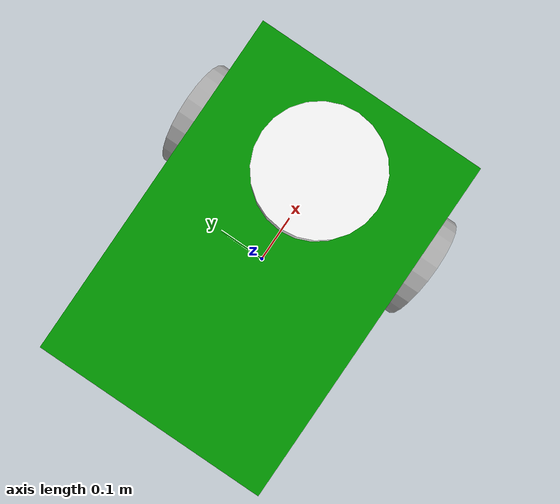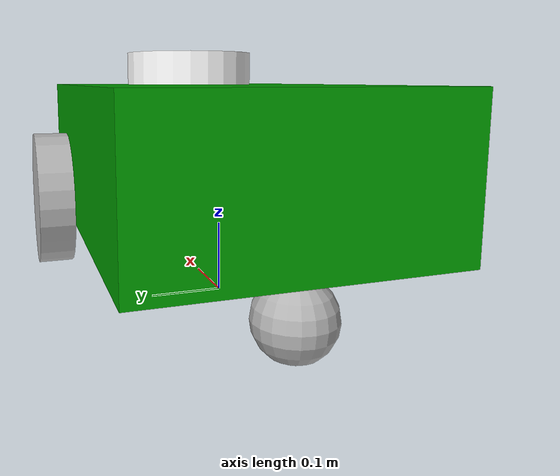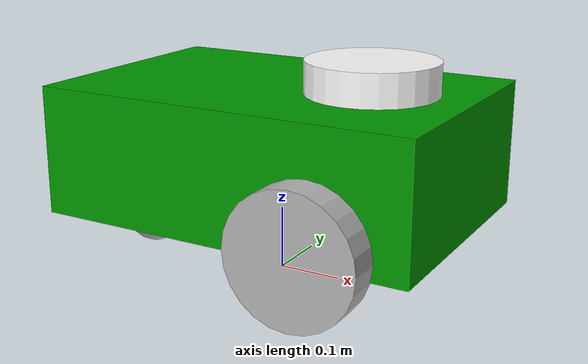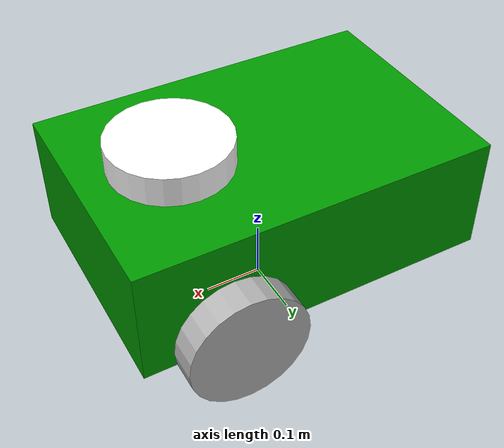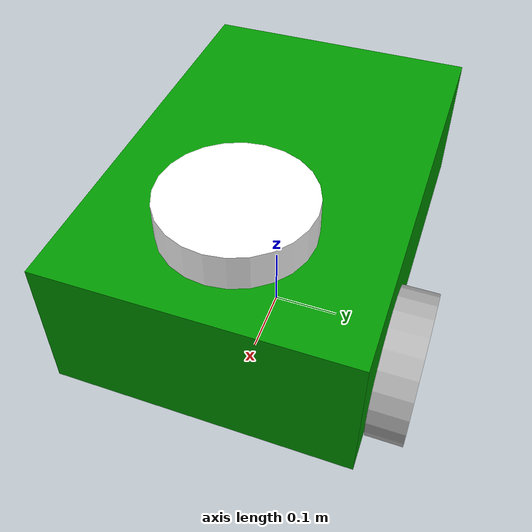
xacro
<?xml version="1.0"?>
<robot name="my_robot" xmlns:xacro="http://www.ros.org/wiki/xacro">

    <xacro:property name="base_length" value="0.6"/>
    <xacro:property name="base_width" value="0.4"/>
    <xacro:property name="base_height" value="0.2"/>
    <xacro:property name="wheel_radius" value="0.1"/>
    <xacro:property name="wheel_length" value="0.05"/>

    <!-- Inertia Macros -->
    <xacro:macro name="box_inertia" params="mass lx ly lz xyz rpy">
        <inertial>
            <origin xyz="${xyz}" rpy="${rpy}" />
            <mass value="${mass}" />
            <inertia ixx="${(mass / 12.0) * (ly * ly + lz * lz)}" ixy="0" ixz="0"
                     iyy="${(mass / 12.0) * (lx * lx + lz * lz)}" iyz="0"
                     izz="${(mass / 12.0) * (lx * lx + ly * ly)}" />
        </inertial>
    </xacro:macro>

    <xacro:macro name="cylinder_inertia" params="mass h r xyz rpy">
        <inertial>
            <origin xyz="${xyz}" rpy="${rpy}" />
            <mass value="${mass}" />
            <inertia ixx="${(mass / 12.0) * (3 * r * r + h * h)}" ixy="0" ixz="0"
                     iyy="${(mass / 12.0) * (3 * r * r + h * h)}" iyz="0"
                     izz="${0.5 * mass * r * r}" />
        </inertial>
    </xacro:macro>

    <xacro:macro name="sphere_inertia" params="mass r xyz rpy">
        <inertial>
            <origin xyz="${xyz}" rpy="${rpy}" />
            <mass value="${mass}" />
            <inertia ixx="${(2.0 / 5.0) * mass * r * r}" ixy="0" ixz="0"
                     iyy="${(2.0 / 5.0) * mass * r * r}" iyz="0"
                     izz="${(2.0 / 5.0) * mass * r * r}" />
        </inertial>
    </xacro:macro>

    <!-- Materials -->
    <material name="green">
        <color rgba="0 0.6 0 1"/>
    </material>

    <material name="white">
        <color rgba="1 1 1 1"/>
    </material>

    <material name="gray">
        <color rgba="0.7 0.7 0.7 1"/>
    </material>

    <link name="base_footprint"/>

    <!-- Base -->
    <link name="base_link">
        <visual>
            <geometry>
                <box size="${base_length} ${base_width} ${base_height}"/>
            </geometry>
            <origin xyz="0 0 ${base_height / 2.0}" rpy="0 0 0"/>
            <material name="green"/>
        </visual>
        <collision>
            <geometry>
                <box size="${base_length} ${base_width} ${base_height}" />
            </geometry>
            <origin xyz="0 0 ${base_height / 2.0}" rpy="0 0 0" />
        </collision>
        <xacro:box_inertia mass="5.0" lx="${base_length}" ly="${base_width}" lz="${base_height}" xyz="0 0 ${base_height / 2.0}" rpy="0 0 0" />
    </link>

    <joint name="base_joint" type="fixed">
        <parent link="base_footprint"/>
        <child link="base_link"/>
        <origin xyz="0 0 ${wheel_radius}" rpy="0 0 0"/>
    </joint>

    <!-- LIDAR -->
    <link name="lidar">
        <visual>
            <geometry>
                <cylinder radius="0.1" length="0.05"/>
            </geometry>
            <origin xyz="0 0 0.025" rpy="0 0 0"/>
            <material name="white"/>
        </visual>
        <collision>
            <geometry>
                <cylinder radius="0.1" length="0.05"/>
            </geometry>
            <origin xyz="0 0 0.025" rpy="0 0 0"/>
        </collision>
        <xacro:cylinder_inertia mass="1.0" h="0.05" r="0.1" xyz="0 0 0" rpy="0 0 0"/>
    </link>

    <joint name="base_lidar_joint" type="fixed">
        <parent link="base_link"/>
        <child link="lidar"/>
        <origin xyz="${base_length / 4.0} 0 ${base_height}" rpy="0 0 0"/>
    </joint>

    <!-- Left Wheel -->
    <link name="left_wheel">
        <visual>
            <geometry>
                <cylinder radius="${wheel_radius}" length="${wheel_length}"/>
            </geometry>
            <origin xyz="0 0 0" rpy="0 0 0"/>
            <material name="gray"/>
        </visual>
        <collision>
            <geometry>
                <cylinder radius="${wheel_radius}" length="${wheel_length}"/>
            </geometry>
            <origin xyz="0 0 0" rpy="0 0 0"/>
        </collision>
        <xacro:cylinder_inertia mass="1.0" h="${wheel_length}" r="${wheel_radius}" xyz="0 0 0" rpy="0 0 0"/>
    </link>

    <joint name="base_left_wheel_joint" type="continuous">
        <parent link="base_link"/>
        <child link="left_wheel"/>
        <origin xyz="${base_length / 4.0} ${(base_width / 2.0) + (wheel_length / 2.0)} 0.025" rpy="${-pi / 2.0} 0 0"/>
        <axis xyz="0 0 1"/>
    </joint>

    <!-- Right Wheel -->
    <link name="right_wheel">
        <visual>
            <geometry>
                <cylinder radius="${wheel_radius}" length="${wheel_length}"/>
            </geometry>
            <origin xyz="0 0 0" rpy="0 0 0"/>
            <material name="gray"/>
        </visual>
        <collision>
            <geometry>
                <cylinder radius="${wheel_radius}" length="${wheel_length}"/>
            </geometry>
            <origin xyz="0 0 0" rpy="0 0 0"/>
        </collision>
        <xacro:cylinder_inertia mass="1.0" h="${wheel_length}" r="${wheel_radius}" xyz="0 0 0" rpy="0 0 0"/>
    </link>

    <joint name="base_right_wheel_joint" type="continuous">
        <parent link="base_link"/>
        <child link="right_wheel"/>
        <origin xyz="${base_length / 4.0} ${-((base_width / 2.0) + (wheel_length / 2.0))} 0.025" rpy="${-pi / 2.0} 0 0"/>
        <axis xyz="0 0 1"/>
    </joint>

    <!-- Caster Wheel -->
    <link name="caster_wheel">
        <visual>
            <geometry>
                <sphere radius="${wheel_radius / 2.0}"/>
            </geometry>
            <origin xyz="0 0 0" rpy="0 0 0"/>
            <material name="gray"/>
        </visual>
        <collision>
            <geometry>
                <sphere radius="${wheel_radius / 2.0}"/>
            </geometry>
            <origin xyz="0 0 0" rpy="0 0 0"/>
        </collision>
        <xacro:sphere_inertia mass="2.0" r="${wheel_radius / 2.0}" xyz="0 0 0" rpy="0 0 0"/>
    </link>

    <joint name="base_caster_wheel_joint" type="fixed">
        <parent link="base_link"/>
        <child link="caster_wheel"/>
        <origin xyz="${-(base_length / 2.0) + 0.05} 0 ${-(wheel_radius / 2.0)}" rpy="0 0 0"/>
    </joint>

    <!-- Gazebo Materials -->
    <gazebo reference="base_link">
        <material>Gazebo/Green</material>
    </gazebo>

    <gazebo reference="left_wheel">
        <material>Gazebo/Grey</material>
    </gazebo>

    <gazebo reference="right_wheel">
        <material>Gazebo/Grey</material>
    </gazebo>

    <gazebo reference="caster_wheel">
        <material>Gazebo/DarkGrey</material>
    </gazebo>

    <gazebo reference="lidar">
        <material>Gazebo/White</material>
    </gazebo>

    <gazebo>
    	<plugin name="diff_drive_controller" filename="libgazebo_ros_diff_drive.so">
        	<!-- Update rate in Hz -->
        	<update_rate>50</update_rate>

        	<!-- wheels -->
        	<left_joint>base_left_wheel_joint</left_joint>
        	<right_joint>base_right_wheel_joint</right_joint>

        	<!-- kinematics -->
        	<wheel_separation>0.4</wheel_separation>
        	<wheel_diameter>0.2</wheel_diameter>

        	<!-- output -->
        	<publish_odom>true</publish_odom>
        	<publish_odom_tf>true</publish_odom_tf>
        	<publish_wheel_tf>true</publish_wheel_tf>

        	<odometry_topic>odom</odometry_topic>
        	<odometry_frame>odom</odometry_frame>
        	<robot_base_frame>base_footprint</robot_base_frame>

        	<!-- input -->
        	<command_topic>cmd_vel</command_topic>

      </plugin>
  </gazebo>

</robot>
